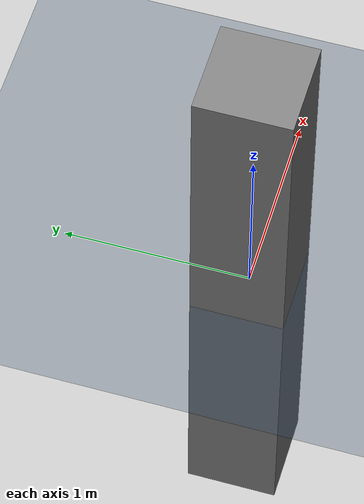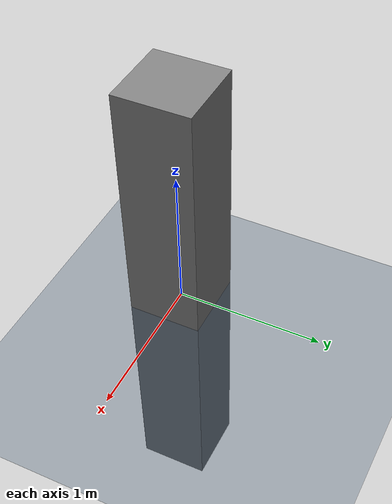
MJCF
<mujoco model="kinova_scene">
  <compiler angle="radian"/>
  <option integrator="implicitfast" impratio="10" timestep = "0.002" cone="elliptic" solver="PGS"/>
  <statistic center="0 0 0" extent="3"/>

  <asset>
    <texture type="skybox" builtin="gradient" rgb1="0.3 0.5 0.7" rgb2="0 0 0" width="512" height="3072"/>
    <texture type="2d" name="groundplane" builtin="checker" mark="edge" rgb1="0.2 0.3 0.4" rgb2="0.1 0.2 0.3"
      markrgb="0.8 0.8 0.8" width="300" height="300"/>
    <mesh name="base_link" file="base_link.STL" />
    <mesh name="shoulder_link" file="shoulder_link.STL" />
    <mesh name="half_arm_1_link" file="half_arm_1_link.STL" />
    <mesh name="half_arm_2_link" file="half_arm_2_link.STL" />
    <mesh name="forearm_link" file="forearm_link.STL" />
    <mesh name="spherical_wrist_1_link" file="spherical_wrist_1_link.STL" />
    <mesh name="spherical_wrist_2_link" file="spherical_wrist_2_link.STL" />
    <mesh name="bracelet_with_vision_link" file="bracelet_with_vision_link.STL" />
    <mesh name="delto_base_link" file="delto_base_link.stl" />
    <mesh name="link_01" file="link_01.stl" />
    <mesh name="link_02" file="link_02.stl" />
    <mesh name="link_03" file="link_03.stl" />
    <mesh name="link_04" file="link_04.stl" />
    <mesh name="link_tip_high" file="link_tip_high.stl" />
    <material name="groundplane" texture="groundplane" texuniform="true" texrepeat="5 5" reflectance="0.2"/>
  </asset>

  <worldbody>
    <light pos="0 0 1.5" dir="0 0 -1" directional="true"/>

    <geom name="floor" size="0 0 0.05" type="plane" material="groundplane"/>

    <geom name="body" size="0.25 0.25 1.7" type="box" rgba="0.5 0.5 0.5 1"/>

    <include file="dual_with_actuators.xml"/>

  </worldbody>

</mujoco>

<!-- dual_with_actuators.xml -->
<mujoco model="dual_robot">
<compiler angle="radian"/>
<option integrator="implicitfast" impratio="10" timestep = "0.002" cone="elliptic" solver="PGS"/>
 <statistic center="0 0 0" extent="3"/>
  <asset>
    <texture type="skybox" builtin="gradient" rgb1="0.3 0.5 0.7" rgb2="0 0 0" width="512" height="3072"/>
    <texture type="2d" name="groundplane" builtin="checker" mark="edge" rgb1="0.2 0.3 0.4" rgb2="0.1 0.2 0.3"
      markrgb="0.8 0.8 0.8" width="300" height="300"/>
    <material name="groundplane" texture="groundplane" texuniform="true" texrepeat="5 5" reflectance="0.2"/>
    <mesh name="base_link" file="base_link.STL" />
    <mesh name="shoulder_link" file="shoulder_link.STL" />
    <mesh name="half_arm_1_link" file="half_arm_1_link.STL" />
    <mesh name="half_arm_2_link" file="half_arm_2_link.STL" />
    <mesh name="forearm_link" file="forearm_link.STL" />
    <mesh name="spherical_wrist_1_link" file="spherical_wrist_1_link.STL" />
    <mesh name="spherical_wrist_2_link" file="spherical_wrist_2_link.STL" />
    <mesh name="bracelet_with_vision_link" file="bracelet_with_vision_link.STL" />
    <mesh name="delto_base_link" file="delto_base_link.stl" />
    <mesh name="link_01" file="link_01.stl" />
    <mesh name="link_02" file="link_02.stl" />
    <mesh name="link_03" file="link_03.stl" />
    <mesh name="link_04" file="link_04.stl" />
    <mesh name="link_tip_high" file="link_tip_high.stl" />
  </asset>

  <visual>
    <headlight diffuse="0.6 0.6 0.6" ambient="0.1 0.1 0.1" specular="0 0 0"/>
    <rgba haze="0.15 0.25 0.35 1"/>
    <global azimuth="120" elevation="-20"/>
  </visual>

<default>
    <default class="large_actuator">
      <position kp="2000" kv="100" forcerange="-105 105"/>
    </default>
    <default class="small_actuator">
      <position kp="500" kv="50" forcerange="-52 52"/>
    </default>
</default>

  <worldbody>
    <light pos="0 0 1.5" dir="0 0 -1" directional="true"/>

    <geom name="floor" size="0 0 0.05" type="plane" material="groundplane"/>

    <geom name="body" size="0.25 0.25 1.7" type="box" rgba="0.5 0.5 0.5 1"/>

    <geom name="marker" size="0.25 0.25 1.7" pos =" 0 2 0" type="box" rgba="0.5 0.5 0.5 1"/>

    <geom pos="0 -0.25 1.4" quat=" 0 0 0.707388 -0.706825 " type="mesh" contype="0" conaffinity="0" group="1" density="0" rgba="0.75294 0.75294 0.75294 1" mesh="base_link" />
    <geom name="left_base_link_collision_1" pos="0 -0.25 1.4" quat=" 0 0 0.707388 -0.706825 " type="mesh" rgba="0.75294 0.75294 0.75294 1" mesh="base_link" />
    <geom pos="0 0.25 1.4" quat="0.707388 -0.706825 0 0" type="mesh" contype="0" conaffinity="0" group="1" density="0" rgba="0.75294 0.75294 0.75294 1" mesh="base_link" />
    <geom name="right_base_link_collision_25" pos="0 0.25 1.4" quat="0.707388 -0.706825 0 0" type="mesh" rgba="0.75294 0.75294 0.75294 1" mesh="base_link" />
    <body name="left_shoulder_link" pos="0 -0.40643 1.40012" quat="-0.706828 0.707386 0 0">
      <inertial pos="-2.3e-05 -0.010364 -0.07336" quat="0.707051 0.0451246 -0.0453544 0.704263" mass="1.3773" diaginertia="0.00488868 0.00457 0.00135132" />
      <joint name="left_joint_1" pos="0 0 0" axis="0 0 1" actuatorfrcrange="-39 39" />
      <geom type="mesh" contype="0" conaffinity="0" group="1" density="0" rgba="0.75294 0.75294 0.75294 1" mesh="shoulder_link" />
      <geom name="left_shoulder_link_collision_2" type="mesh" rgba="0.75294 0.75294 0.75294 1" mesh="shoulder_link" />
      <body name="left_half_arm_1_link" pos="0 0.005375 -0.12838" quat="0.707105 0.707108 0 0">
        <inertial pos="-4.4e-05 -0.09958 -0.013278" quat="0.482348 0.516286 -0.516862 0.483366" mass="1.1636" diaginertia="0.0113017 0.011088 0.00102532" />
        <joint name="left_joint_2" pos="0 0 0" axis="0 0 1" range="-2.24 2.24" actuatorfrcrange="-39 39" />
        <geom type="mesh" contype="0" conaffinity="0" group="1" density="0" rgba="0.75294 0.75294 0.75294 1" mesh="half_arm_1_link" />
        <geom name="left_half_arm_1_link_collision_3" type="mesh" rgba="0.75294 0.75294 0.75294 1" mesh="half_arm_1_link" />
        <body name="left_half_arm_2_link" pos="0 -0.21038 -0.006375" quat="0.707105 -0.707108 0 0">
          <inertial pos="-4.4e-05 -0.006641 -0.117892" quat="0.706144 0.0213722 -0.0209128 0.707437" mass="1.1636" diaginertia="0.0111633 0.010932 0.00100671" />
          <joint name="left_joint_3" pos="0 0 0" axis="0 0 1" actuatorfrcrange="-39 39" />
          <geom type="mesh" contype="0" conaffinity="0" group="1" density="0" rgba="0.75294 0.75294 0.75294 1" mesh="half_arm_2_link" />
          <geom name="left_half_arm_2_link_collision_4" type="mesh" rgba="0.75294 0.75294 0.75294 1" mesh="half_arm_2_link" />
          <body name="left_forearm_link" pos="0 0.006375 -0.21038" quat="0.707105 0.707108 0 0">
            <inertial pos="-1.8e-05 -0.075478 -0.015006" quat="0.483678 0.515961 -0.515859 0.483455" mass="0.9302" diaginertia="0.00834839 0.008147 0.000598606" />
            <joint name="left_joint_4" pos="0 0 0" axis="0 0 1" range="-2.57 2.57" actuatorfrcrange="-39 39" />
            <geom type="mesh" contype="0" conaffinity="0" group="1" density="0" rgba="0.75294 0.75294 0.75294 1" mesh="forearm_link" />
            <geom name="left_forearm_link_collision_5" type="mesh" rgba="0.75294 0.75294 0.75294 1" mesh="forearm_link" />
            <body name="left_spherical_wrist_1_link" pos="0 -0.20843 -0.006375" quat="0.707105 -0.707108 0 0">
              <inertial pos="1e-06 -0.009432 -0.063883" quat="0.703558 0.0707492 -0.0707492 0.703558" mass="0.6781" diaginertia="0.00165901 0.001596 0.000346988" />
              <joint name="left_joint_5" pos="0 0 0" axis="0 0 1" actuatorfrcrange="-9 9" />
              <geom type="mesh" contype="0" conaffinity="0" group="1" density="0" rgba="0.75294 0.75294 0.75294 1" mesh="spherical_wrist_1_link" />
              <geom name="left_spherical_wrist_1_link_collision_6" type="mesh" rgba="0.75294 0.75294 0.75294 1" mesh="spherical_wrist_1_link" />
              <body name="left_spherical_wrist_2_link" pos="0 0.00017505 -0.10593" quat="0.707105 0.707108 0 0">
                <inertial pos="1e-06 -0.045483 -0.00965" quat="0.44426 0.550121 -0.550121 0.44426" mass="0.6781" diaginertia="0.00170087 0.001641 0.00035013" />
                <joint name="left_joint_6" pos="0 0 0" axis="0 0 1" range="-2.09 2.09" actuatorfrcrange="-9 9" />
                <geom type="mesh" contype="0" conaffinity="0" group="1" density="0" rgba="0.75294 0.75294 0.75294 1" mesh="spherical_wrist_2_link" />
                <geom name="left_spherical_wrist_2_link_collision_7" type="mesh" rgba="0.75294 0.75294 0.75294 1" mesh="spherical_wrist_2_link" />
                <body name="left_bracelet_link" pos="0 -0.10593 -0.00017505" quat="0.707105 -0.707108 0 0">
                  <inertial pos="0.000162521 0.00635937 -0.0636259" quat="0.996173 -0.0871132 0.000936754 0.00708873" mass="0.87" diaginertia="0.00294254 0.00276407 0.000900587" />
                  <joint name="left_joint_7" pos="0 0 0" axis="0 0 1" actuatorfrcrange="-9 9" />
                  <geom type="mesh" contype="0" conaffinity="0" group="1" density="0" rgba="0.75294 0.75294 0.75294 1" mesh="bracelet_with_vision_link" />
                  <geom name="left_bracelet_link_collision_8" type="mesh" rgba="0.75294 0.75294 0.75294 1" mesh="bracelet_with_vision_link" />
                  <geom pos="2.41397e-06 -0.000454995 -0.109339" quat="0.00116218 0.707546 -0.706665 0.00116764" type="mesh" contype="0" conaffinity="0" group="1" density="0" rgba="0.196 0.196 0.196 1" mesh="delto_base_link" />
                  <geom name="left_delto_base_link_collision_9" pos="2.41397e-06 -0.000454995 -0.109339" quat="0.00116218 0.707546 -0.706665 0.00116764" type="mesh" rgba="0.196 0.196 0.196 1" mesh="delto_base_link" />
                  <body name="left_F1_01" pos="2.11027e-05 -0.0265 -0.161525" quat="0 0.707388 -0.706825 0">
                    <inertial pos="0.0003906 3.121e-08 -0.014" mass="0.061" diaginertia="1.924e-05 1.70941e-05 5.94788e-06" />
                    <joint name="left_F1M1" pos="0 0 0" axis="0 0 1" range="-1.0472 1.0472" actuatorfrcrange="-10 10" damping="1.1" frictionloss="1.1" />
                    <geom pos="0.0018977 -1.00177e-06 -0.0229838" quat="0.705221 -0.0510098 -0.0510021 0.705309" type="mesh" contype="0" conaffinity="0" group="1" density="0" rgba="0.196 0.196 0.196 1" mesh="link_01" />
                    <geom name="left_F1_01_collision_10" pos="0.0018977 -1.00177e-06 -0.0229838" quat="0.705221 -0.0510098 -0.0510021 0.705309" type="mesh" rgba="0.196 0.196 0.196 1" mesh="link_01" />
                    <body name="left_F1_02" quat="1.16026e-08 -0.707107 -1.16026e-08 -0.707107">
                      <inertial pos="0.01 3.444e-06 0.016" mass="0.025" diaginertia="7.1648e-06 6.31302e-06 3.27418e-06" />
                      <joint name="left_F1M2" pos="0 0 0" axis="0 0 1" range="-1.76278 1.76278" actuatorfrcrange="-10 10" damping="1.1" frictionloss="1.1" />
                      <geom pos="0.010322 0.000267674 0.0135906" quat="0.982248 -0.0130424 0.186916 -0.00903989" type="mesh" contype="0" conaffinity="0" group="1" density="0" rgba="0.196 0.196 0.196 1" mesh="link_02" />
                      <geom name="left_F1_02_collision_11" pos="0.010322 0.000267674 0.0135906" quat="0.982248 -0.0130424 0.186916 -0.00903989" type="mesh" rgba="0.196 0.196 0.196 1" mesh="link_02" />
                      <body name="left_F1_03" pos="0.02022 0 0.03136" quat="0.5 -0.5 -0.5 -0.5">
                        <inertial pos="0.014 -0.0004527 -3.953e-05" mass="0.051" diaginertia="1.69122e-05 1.49403e-05 6.50553e-06" />
                        <joint name="left_F1M3" pos="0 0 0" axis="0 0 1" range="-0.15708 2.53073" actuatorfrcrange="-10 10" damping="1.1" frictionloss="1.1" />
                        <geom pos="0.0190346 -0.000761178 0.000157348" quat="0.499589 0.485884 0.498796 0.515296" type="mesh" contype="0" conaffinity="0" group="1" density="0" rgba="0.196 0.196 0.196 1" mesh="link_03" />
                        <geom name="left_F1_03_collision_12" pos="0.0190346 -0.000761178 0.000157348" quat="0.499589 0.485884 0.498796 0.515296" type="mesh" rgba="0.196 0.196 0.196 1" mesh="link_03" />
                        <body name="left_F1_04" pos="0.0434 0 0">
                          <inertial pos="0.0180423 -0.000265186 -3.82115e-05" quat="0.502534 0.501012 0.497465 0.498974" mass="0.071" diaginertia="2.27675e-05 1.78556e-05 1.24573e-05" />
                          <joint name="left_F1M4" pos="0 0 0" axis="0 0 1" range="-0.226893 2.02458" actuatorfrcrange="-10 10" damping="1.1" frictionloss="1.1" />
                          <geom pos="0.0119923 -0.000772699 -5.20111e-06" quat="0.475945 0.47584 0.524828 0.52116" type="mesh" contype="0" conaffinity="0" group="1" density="0" rgba="0.196 0.196 0.196 1" mesh="link_04" />
                          <geom name="left_F1_04_collision_13" pos="0.0119923 -0.000772699 -5.20111e-06" quat="0.475945 0.47584 0.524828 0.52116" type="mesh" rgba="0.196 0.196 0.196 1" mesh="link_04" />
                          <geom pos="0.0449594 -0.000422631 2.30189e-07" quat="0.512413 0.512458 0.487263 0.487231" type="mesh" contype="0" conaffinity="0" group="1" density="0" rgba="1 1 1 1" mesh="link_tip_high" />
                          <geom name="left_F1_TIP_collision_14" pos="0.0449594 -0.000422631 2.30189e-07" quat="0.512413 0.512458 0.487263 0.487231" type="mesh" rgba="1 1 1 1" mesh="link_tip_high" />
                        </body>
                      </body>
                    </body>
                  </body>
                  <body name="left_F2_01" pos="-0.0230106 0.0133217 -0.161525" quat="0 0.707388 0.706825 0">
                    <inertial pos="0.0003906 3.121e-08 -0.014" mass="0.061" diaginertia="1.924e-05 1.70941e-05 5.94788e-06" />
                    <joint name="left_F2M1" pos="0 0 0" axis="0 0 1" range="-1.91986 0.139626" actuatorfrcrange="-10 10" damping="1.1" frictionloss="1.1" />
                    <geom pos="0.0018977 -1.00177e-06 -0.0229838" quat="0.705221 -0.0510098 -0.0510021 0.705309" type="mesh" contype="0" conaffinity="0" group="1" density="0" rgba="0.196 0.196 0.196 1" mesh="link_01" />
                    <geom name="left_F2_01_collision_15" pos="0.0018977 -1.00177e-06 -0.0229838" quat="0.705221 -0.0510098 -0.0510021 0.705309" type="mesh" rgba="0.196 0.196 0.196 1" mesh="link_01" />
                    <body name="left_F2_02" quat="0.000563312 -0.707388 -0.000562864 -0.706825">
                      <inertial pos="0.01 3.444e-06 0.016" mass="0.025" diaginertia="7.1648e-06 6.31302e-06 3.27418e-06" />
                      <joint name="left_F2M2" pos="0 0 0" axis="0 0 1" range="-1.76278 1.76278" actuatorfrcrange="-10 10" damping="1.1" frictionloss="1.1" />
                      <geom pos="0.010322 0.000267674 0.0135906" quat="0.982248 -0.0130424 0.186916 -0.00903989" type="mesh" contype="0" conaffinity="0" group="1" density="0" rgba="0.196 0.196 0.196 1" mesh="link_02" />
                      <geom name="left_F2_02_collision_16" pos="0.010322 0.000267674 0.0135906" quat="0.982248 -0.0130424 0.186916 -0.00903989" type="mesh" rgba="0.196 0.196 0.196 1" mesh="link_02" />
                      <body name="left_F2_03" pos="0.02022 0 0.03136" quat="0.500398 -0.5 -0.5 -0.499602">
                        <inertial pos="0.014 -0.0004527 -3.953e-05" mass="0.051" diaginertia="1.69122e-05 1.49403e-05 6.50553e-06" />
                        <joint name="left_F2M3" pos="0 0 0" axis="0 0 1" range="-0.15708 2.53073" actuatorfrcrange="-10 10" damping="1.1" frictionloss="1.1" />
                        <geom pos="0.0190346 -0.000761178 0.000157348" quat="0.499589 0.485884 0.498796 0.515296" type="mesh" contype="0" conaffinity="0" group="1" density="0" rgba="0.196 0.196 0.196 1" mesh="link_03" />
                        <geom name="left_F2_03_collision_17" pos="0.0190346 -0.000761178 0.000157348" quat="0.499589 0.485884 0.498796 0.515296" type="mesh" rgba="0.196 0.196 0.196 1" mesh="link_03" />
                        <body name="left_F2_04" pos="0.0434 0 0">
                          <inertial pos="0.0180423 -0.000265186 -3.82115e-05" quat="0.502534 0.501012 0.497465 0.498974" mass="0.071" diaginertia="2.27675e-05 1.78556e-05 1.24573e-05" />
                          <joint name="left_F2M4" pos="0 0 0" axis="0.0433592 0 0.99906" range="-0.226893 2.02458" actuatorfrcrange="-10 10" damping="1.1" frictionloss="1.1" />
                          <geom pos="0.0119923 -0.000772699 -5.20111e-06" quat="0.475945 0.47584 0.524828 0.52116" type="mesh" contype="0" conaffinity="0" group="1" density="0" rgba="0.196 0.196 0.196 1" mesh="link_04" />
                          <geom name="left_F2_04_collision_18" pos="0.0119923 -0.000772699 -5.20111e-06" quat="0.475945 0.47584 0.524828 0.52116" type="mesh" rgba="0.196 0.196 0.196 1" mesh="link_04" />
                          <geom pos="0.0449594 -0.000422631 2.30189e-07" quat="0.512413 0.512458 0.487263 0.487231" type="mesh" contype="0" conaffinity="0" group="1" density="0" rgba="1 1 1 1" mesh="link_tip_high" />
                          <geom name="left_F2_TIP_collision_19" pos="0.0449594 -0.000422631 2.30189e-07" quat="0.512413 0.512458 0.487263 0.487231" type="mesh" rgba="1 1 1 1" mesh="link_tip_high" />
                        </body>
                      </body>
                    </body>
                  </body>
                  <body name="left_F3_01" pos="0.0229894 0.0133583 -0.161525" quat="0 0.707388 0.706825 0">
                    <inertial pos="0.0003906 3.121e-08 -0.014" mass="0.061" diaginertia="1.924e-05 1.70941e-05 5.94788e-06" />
                    <joint name="left_F3M1" pos="0 0 0" axis="0 0 1" range="-0.0872665 2.00713" actuatorfrcrange="-10 10" damping="1.1" frictionloss="1.1" />
                    <geom pos="0.0018977 -1.00177e-06 -0.0229838" quat="0.705221 -0.0510098 -0.0510021 0.705309" type="mesh" contype="0" conaffinity="0" group="1" density="0" rgba="0.196 0.196 0.196 1" mesh="link_01" />
                    <geom name="left_F3_01_collision_20" pos="0.0018977 -1.00177e-06 -0.0229838" quat="0.705221 -0.0510098 -0.0510021 0.705309" type="mesh" rgba="0.196 0.196 0.196 1" mesh="link_01" />
                    <body name="left_F3_02" quat="0.000563312 -0.707388 -0.000562864 -0.706825">
                      <inertial pos="0.01 3.444e-06 0.016" mass="0.025" diaginertia="7.1648e-06 6.31302e-06 3.27418e-06" />
                      <joint name="left_F3M2" pos="0 0 0" axis="0 0 1" range="-1.76278 1.76278" actuatorfrcrange="-10 10" damping="1.1" frictionloss="1.1" />
                      <geom pos="0.010322 0.000267674 0.0135906" quat="0.982248 -0.0130424 0.186916 -0.00903989" type="mesh" contype="0" conaffinity="0" group="1" density="0" rgba="0.196 0.196 0.196 1" mesh="link_02" />
                      <geom name="left_F3_02_collision_21" pos="0.010322 0.000267674 0.0135906" quat="0.982248 -0.0130424 0.186916 -0.00903989" type="mesh" rgba="0.196 0.196 0.196 1" mesh="link_02" />
                      <body name="left_F3_03" pos="0.02022 0 0.03136" quat="0.500398 -0.5 -0.5 -0.499602">
                        <inertial pos="0.014 -0.0004527 -3.953e-05" mass="0.051" diaginertia="1.69122e-05 1.49403e-05 6.50553e-06" />
                        <joint name="left_F3M3" pos="0 0 0" axis="0 0 1" range="-0.15708 2.53073" actuatorfrcrange="-10 10" damping="1.1" frictionloss="1.1" />
                        <geom pos="0.0190346 -0.000761178 0.000157348" quat="0.499589 0.485884 0.498796 0.515296" type="mesh" contype="0" conaffinity="0" group="1" density="0" rgba="0.196 0.196 0.196 1" mesh="link_03" />
                        <geom name="left_F3_03_collision_22" pos="0.0190346 -0.000761178 0.000157348" quat="0.499589 0.485884 0.498796 0.515296" type="mesh" rgba="0.196 0.196 0.196 1" mesh="link_03" />
                        <body name="left_F3_04" pos="0.0434 0 0">
                          <inertial pos="0.0180423 -0.000265186 -3.82115e-05" quat="0.502534 0.501012 0.497465 0.498974" mass="0.071" diaginertia="2.27675e-05 1.78556e-05 1.24573e-05" />
                          <joint name="left_F3M4" pos="0 0 0" axis="0 0 1" range="-0.226893 2.02458" actuatorfrcrange="-10 10" damping="1.1" frictionloss="1.1" />
                          <geom pos="0.0119923 -0.000772699 -5.20111e-06" quat="0.475945 0.47584 0.524828 0.52116" type="mesh" contype="0" conaffinity="0" group="1" density="0" rgba="0.196 0.196 0.196 1" mesh="link_04" />
                          <geom name="left_F3_04_collision_23" pos="0.0119923 -0.000772699 -5.20111e-06" quat="0.475945 0.47584 0.524828 0.52116" type="mesh" rgba="0.196 0.196 0.196 1" mesh="link_04" />
                          <geom pos="0.0449594 -0.000422631 2.30189e-07" quat="0.512413 0.512458 0.487263 0.487231" type="mesh" contype="0" conaffinity="0" group="1" density="0" rgba="1 1 1 1" mesh="link_tip_high" />
                          <geom name="left_F3_TIP_collision_24" pos="0.0449594 -0.000422631 2.30189e-07" quat="0.512413 0.512458 0.487263 0.487231" type="mesh" rgba="1 1 1 1" mesh="link_tip_high" />
                        </body>
                      </body>
                    </body>
                  </body>
                </body>
              </body>
            </body>
          </body>
        </body>
      </body>
    </body>
    <body name="right_shoulder_link" pos="0 0.40643 1.40012" quat="0.706823 0.707391 0 0">
      <inertial pos="-2.3e-05 -0.010364 -0.07336" quat="0.707051 0.0451246 -0.0453544 0.704263" mass="1.3773" diaginertia="0.00488868 0.00457 0.00135132" />
      <joint name="right_joint_1" pos="0 0 0" axis="0 0 1" actuatorfrcrange="-39 39" />
      <geom type="mesh" contype="0" conaffinity="0" group="1" density="0" rgba="0.75294 0.75294 0.75294 1" mesh="shoulder_link" />
      <geom name="right_shoulder_link_collision_26" type="mesh" rgba="0.75294 0.75294 0.75294 1" mesh="shoulder_link" />
      <body name="right_half_arm_1_link" pos="0 0.005375 -0.12838" quat="0.707105 0.707108 0 0">
        <inertial pos="-4.4e-05 -0.09958 -0.013278" quat="0.482348 0.516286 -0.516862 0.483366" mass="1.1636" diaginertia="0.0113017 0.011088 0.00102532" />
        <joint name="right_joint_2" pos="0 0 0" axis="0 0 1" range="-2.24 2.24" actuatorfrcrange="-39 39" />
        <geom type="mesh" contype="0" conaffinity="0" group="1" density="0" rgba="0.75294 0.75294 0.75294 1" mesh="half_arm_1_link" />
        <geom name="right_half_arm_1_link_collision_27" type="mesh" rgba="0.75294 0.75294 0.75294 1" mesh="half_arm_1_link" />
        <body name="right_half_arm_2_link" pos="0 -0.21038 -0.006375" quat="0.707105 -0.707108 0 0">
          <inertial pos="-4.4e-05 -0.006641 -0.117892" quat="0.706144 0.0213722 -0.0209128 0.707437" mass="1.1636" diaginertia="0.0111633 0.010932 0.00100671" />
          <joint name="right_joint_3" pos="0 0 0" axis="0 0 1" actuatorfrcrange="-39 39" />
          <geom type="mesh" contype="0" conaffinity="0" group="1" density="0" rgba="0.75294 0.75294 0.75294 1" mesh="half_arm_2_link" />
          <geom name="right_half_arm_2_link_collision_28" type="mesh" rgba="0.75294 0.75294 0.75294 1" mesh="half_arm_2_link" />
          <body name="right_forearm_link" pos="0 0.006375 -0.21038" quat="0.707105 0.707108 0 0">
            <inertial pos="-1.8e-05 -0.075478 -0.015006" quat="0.483678 0.515961 -0.515859 0.483455" mass="0.9302" diaginertia="0.00834839 0.008147 0.000598606" />
            <joint name="right_joint_4" pos="0 0 0" axis="0 0 1" range="-2.57 2.57" actuatorfrcrange="-39 39" />
            <geom type="mesh" contype="0" conaffinity="0" group="1" density="0" rgba="0.75294 0.75294 0.75294 1" mesh="forearm_link" />
            <geom name="right_forearm_link_collision_29" type="mesh" rgba="0.75294 0.75294 0.75294 1" mesh="forearm_link" />
            <body name="right_spherical_wrist_1_link" pos="0 -0.20843 -0.006375" quat="0.707105 -0.707108 0 0">
              <inertial pos="1e-06 -0.009432 -0.063883" quat="0.703558 0.0707492 -0.0707492 0.703558" mass="0.6781" diaginertia="0.00165901 0.001596 0.000346988" />
              <joint name="right_joint_5" pos="0 0 0" axis="0 0 1" actuatorfrcrange="-9 9" />
              <geom type="mesh" contype="0" conaffinity="0" group="1" density="0" rgba="0.75294 0.75294 0.75294 1" mesh="spherical_wrist_1_link" />
              <geom name="right_spherical_wrist_1_link_collision_30" type="mesh" rgba="0.75294 0.75294 0.75294 1" mesh="spherical_wrist_1_link" />
              <body name="right_spherical_wrist_2_link" pos="0 0.00017505 -0.10593" quat="0.707105 0.707108 0 0">
                <inertial pos="1e-06 -0.045483 -0.00965" quat="0.44426 0.550121 -0.550121 0.44426" mass="0.6781" diaginertia="0.00170087 0.001641 0.00035013" />
                <joint name="right_joint_6" pos="0 0 0" axis="0 0 1" range="-2.09 2.09" actuatorfrcrange="-9 9" />
                <geom type="mesh" contype="0" conaffinity="0" group="1" density="0" rgba="0.75294 0.75294 0.75294 1" mesh="spherical_wrist_2_link" />
                <geom name="right_spherical_wrist_2_link_collision_31" type="mesh" rgba="0.75294 0.75294 0.75294 1" mesh="spherical_wrist_2_link" />
                <body name="right_bracelet_link" pos="0 -0.10593 -0.00017505" quat="0.707105 -0.707108 0 0">
                  <inertial pos="0.000162521 0.00635937 -0.0636259" quat="0.996173 -0.0871132 0.000936754 0.00708873" mass="0.87" diaginertia="0.00294254 0.00276407 0.000900587" />
                  <joint name="right_joint_7" pos="0 0 0" axis="0 0 1" actuatorfrcrange="-9 9" />
                  <geom type="mesh" contype="0" conaffinity="0" group="1" density="0" rgba="0.75294 0.75294 0.75294 1" mesh="bracelet_with_vision_link" />
                  <geom name="right_bracelet_link_collision_32" type="mesh" rgba="0.75294 0.75294 0.75294 1" mesh="bracelet_with_vision_link" />
                  <geom pos="2.41397e-06 -0.000454995 -0.109339" quat="0.00116218 0.707546 -0.706665 0.00116764" type="mesh" contype="0" conaffinity="0" group="1" density="0" rgba="0.196 0.196 0.196 1" mesh="delto_base_link" />
                  <geom name="right_delto_base_link_collision_33" pos="2.41397e-06 -0.000454995 -0.109339" quat="0.00116218 0.707546 -0.706665 0.00116764" type="mesh" rgba="0.196 0.196 0.196 1" mesh="delto_base_link" />
                  <body name="right_F1_01" pos="2.11027e-05 -0.0265 -0.161525" quat="0 0.707388 -0.706825 0">
                    <inertial pos="0.0003906 3.121e-08 -0.014" mass="0.061" diaginertia="1.924e-05 1.70941e-05 5.94788e-06" />
                    <joint name="right_F1M1" pos="0 0 0" axis="0 0 1" range="-1.0472 1.0472" actuatorfrcrange="-10 10" damping="1.1" frictionloss="1.1" />
                    <geom pos="0.0018977 -1.00177e-06 -0.0229838" quat="0.705221 -0.0510098 -0.0510021 0.705309" type="mesh" contype="0" conaffinity="0" group="1" density="0" rgba="0.196 0.196 0.196 1" mesh="link_01" />
                    <geom name="right_F1_01_collision_34" pos="0.0018977 -1.00177e-06 -0.0229838" quat="0.705221 -0.0510098 -0.0510021 0.705309" type="mesh" rgba="0.196 0.196 0.196 1" mesh="link_01" />
                    <body name="right_F1_02" quat="1.16026e-08 -0.707107 -1.16026e-08 -0.707107">
                      <inertial pos="0.01 3.444e-06 0.016" mass="0.025" diaginertia="7.1648e-06 6.31302e-06 3.27418e-06" />
                      <joint name="right_F1M2" pos="0 0 0" axis="0 0 1" range="-1.76278 1.76278" actuatorfrcrange="-10 10" damping="1.1" frictionloss="1.1" />
                      <geom pos="0.010322 0.000267674 0.0135906" quat="0.982248 -0.0130424 0.186916 -0.00903989" type="mesh" contype="0" conaffinity="0" group="1" density="0" rgba="0.196 0.196 0.196 1" mesh="link_02" />
                      <geom name="right_F1_02_collision_35" pos="0.010322 0.000267674 0.0135906" quat="0.982248 -0.0130424 0.186916 -0.00903989" type="mesh" rgba="0.196 0.196 0.196 1" mesh="link_02" />
                      <body name="right_F1_03" pos="0.02022 0 0.03136" quat="0.5 -0.5 -0.5 -0.5">
                        <inertial pos="0.014 -0.0004527 -3.953e-05" mass="0.051" diaginertia="1.69122e-05 1.49403e-05 6.50553e-06" />
                        <joint name="right_F1M3" pos="0 0 0" axis="0 0 1" range="-0.15708 2.53073" actuatorfrcrange="-10 10" damping="1.1" frictionloss="1.1" />
                        <geom pos="0.0190346 -0.000761178 0.000157348" quat="0.499589 0.485884 0.498796 0.515296" type="mesh" contype="0" conaffinity="0" group="1" density="0" rgba="0.196 0.196 0.196 1" mesh="link_03" />
                        <geom name="right_F1_03_collision_36" pos="0.0190346 -0.000761178 0.000157348" quat="0.499589 0.485884 0.498796 0.515296" type="mesh" rgba="0.196 0.196 0.196 1" mesh="link_03" />
                        <body name="right_F1_04" pos="0.0434 0 0">
                          <inertial pos="0.0180423 -0.000265186 -3.82115e-05" quat="0.502534 0.501012 0.497465 0.498974" mass="0.071" diaginertia="2.27675e-05 1.78556e-05 1.24573e-05" />
                          <joint name="right_F1M4" pos="0 0 0" axis="0 0 1" range="-0.226893 2.02458" actuatorfrcrange="-10 10" damping="1.1" frictionloss="1.1" />
                          <geom pos="0.0119923 -0.000772699 -5.20111e-06" quat="0.475945 0.47584 0.524828 0.52116" type="mesh" contype="0" conaffinity="0" group="1" density="0" rgba="0.196 0.196 0.196 1" mesh="link_04" />
                          <geom name="right_F1_04_collision_37" pos="0.0119923 -0.000772699 -5.20111e-06" quat="0.475945 0.47584 0.524828 0.52116" type="mesh" rgba="0.196 0.196 0.196 1" mesh="link_04" />
                          <geom pos="0.0449594 -0.000422631 2.30189e-07" quat="0.512413 0.512458 0.487263 0.487231" type="mesh" contype="0" conaffinity="0" group="1" density="0" rgba="1 1 1 1" mesh="link_tip_high" />
                          <geom name="right_F1_TIP_collision_38" pos="0.0449594 -0.000422631 2.30189e-07" quat="0.512413 0.512458 0.487263 0.487231" type="mesh" rgba="1 1 1 1" mesh="link_tip_high" />
                        </body>
                      </body>
                    </body>
                  </body>
                  <body name="right_F2_01" pos="-0.0230106 0.0133217 -0.161525" quat="0 0.707388 0.706825 0">
                    <inertial pos="0.0003906 3.121e-08 -0.014" mass="0.061" diaginertia="1.924e-05 1.70941e-05 5.94788e-06" />
                    <joint name="right_F2M1" pos="0 0 0" axis="0 0 1" range="-1.91986 0.139626" actuatorfrcrange="-10 10" damping="1.1" frictionloss="1.1" />
                    <geom pos="0.0018977 -1.00177e-06 -0.0229838" quat="0.705221 -0.0510098 -0.0510021 0.705309" type="mesh" contype="0" conaffinity="0" group="1" density="0" rgba="0.196 0.196 0.196 1" mesh="link_01" />
                    <geom name="right_F2_01_collision_39" pos="0.0018977 -1.00177e-06 -0.0229838" quat="0.705221 -0.0510098 -0.0510021 0.705309" type="mesh" rgba="0.196 0.196 0.196 1" mesh="link_01" />
                    <body name="right_F2_02" quat="0.000563312 -0.707388 -0.000562864 -0.706825">
                      <inertial pos="0.01 3.444e-06 0.016" mass="0.025" diaginertia="7.1648e-06 6.31302e-06 3.27418e-06" />
                      <joint name="right_F2M2" pos="0 0 0" axis="0 0 1" range="-1.76278 1.76278" actuatorfrcrange="-10 10" damping="1.1" frictionloss="1.1" />
                      <geom pos="0.010322 0.000267674 0.0135906" quat="0.982248 -0.0130424 0.186916 -0.00903989" type="mesh" contype="0" conaffinity="0" group="1" density="0" rgba="0.196 0.196 0.196 1" mesh="link_02" />
                      <geom name="right_F2_02_collision_40" pos="0.010322 0.000267674 0.0135906" quat="0.982248 -0.0130424 0.186916 -0.00903989" type="mesh" rgba="0.196 0.196 0.196 1" mesh="link_02" />
                      <body name="right_F2_03" pos="0.02022 0 0.03136" quat="0.500398 -0.5 -0.5 -0.499602">
                        <inertial pos="0.014 -0.0004527 -3.953e-05" mass="0.051" diaginertia="1.69122e-05 1.49403e-05 6.50553e-06" />
                        <joint name="right_F2M3" pos="0 0 0" axis="0 0 1" range="-0.15708 2.53073" actuatorfrcrange="-10 10" damping="1.1" frictionloss="1.1" />
                        <geom pos="0.0190346 -0.000761178 0.000157348" quat="0.499589 0.485884 0.498796 0.515296" type="mesh" contype="0" conaffinity="0" group="1" density="0" rgba="0.196 0.196 0.196 1" mesh="link_03" />
                        <geom name="right_F2_03_collision_41" pos="0.0190346 -0.000761178 0.000157348" quat="0.499589 0.485884 0.498796 0.515296" type="mesh" rgba="0.196 0.196 0.196 1" mesh="link_03" />
                        <body name="right_F2_04" pos="0.0434 0 0">
                          <inertial pos="0.0180423 -0.000265186 -3.82115e-05" quat="0.502534 0.501012 0.497465 0.498974" mass="0.071" diaginertia="2.27675e-05 1.78556e-05 1.24573e-05" />
                          <joint name="right_F2M4" pos="0 0 0" axis="0.0433592 0 0.99906" range="-0.226893 2.02458" actuatorfrcrange="-10 10" damping="1.1" frictionloss="1.1" />
                          <geom pos="0.0119923 -0.000772699 -5.20111e-06" quat="0.475945 0.47584 0.524828 0.52116" type="mesh" contype="0" conaffinity="0" group="1" density="0" rgba="0.196 0.196 0.196 1" mesh="link_04" />
                          <geom name="right_F2_04_collision_42" pos="0.0119923 -0.000772699 -5.20111e-06" quat="0.475945 0.47584 0.524828 0.52116" type="mesh" rgba="0.196 0.196 0.196 1" mesh="link_04" />
                          <geom pos="0.0449594 -0.000422631 2.30189e-07" quat="0.512413 0.512458 0.487263 0.487231" type="mesh" contype="0" conaffinity="0" group="1" density="0" rgba="1 1 1 1" mesh="link_tip_high" />
                          <geom name="right_F2_TIP_collision_43" pos="0.0449594 -0.000422631 2.30189e-07" quat="0.512413 0.512458 0.487263 0.487231" type="mesh" rgba="1 1 1 1" mesh="link_tip_high" />
                        </body>
                      </body>
                    </body>
                  </body>
                  <body name="right_F3_01" pos="0.0229894 0.0133583 -0.161525" quat="0 0.707388 0.706825 0">
                    <inertial pos="0.0003906 3.121e-08 -0.014" mass="0.061" diaginertia="1.924e-05 1.70941e-05 5.94788e-06" />
                    <joint name="right_F3M1" pos="0 0 0" axis="0 0 1" range="-0.0872665 2.00713" actuatorfrcrange="-10 10" damping="1.1" frictionloss="1.1" />
                    <geom pos="0.0018977 -1.00177e-06 -0.0229838" quat="0.705221 -0.0510098 -0.0510021 0.705309" type="mesh" contype="0" conaffinity="0" group="1" density="0" rgba="0.196 0.196 0.196 1" mesh="link_01" />
                    <geom name="right_F3_01_collision_44" pos="0.0018977 -1.00177e-06 -0.0229838" quat="0.705221 -0.0510098 -0.0510021 0.705309" type="mesh" rgba="0.196 0.196 0.196 1" mesh="link_01" />
                    <body name="right_F3_02" quat="0.000563312 -0.707388 -0.000562864 -0.706825">
                      <inertial pos="0.01 3.444e-06 0.016" mass="0.025" diaginertia="7.1648e-06 6.31302e-06 3.27418e-06" />
                      <joint name="right_F3M2" pos="0 0 0" axis="0 0 1" range="-1.76278 1.76278" actuatorfrcrange="-10 10" damping="1.1" frictionloss="1.1" />
                      <geom pos="0.010322 0.000267674 0.0135906" quat="0.982248 -0.0130424 0.186916 -0.00903989" type="mesh" contype="0" conaffinity="0" group="1" density="0" rgba="0.196 0.196 0.196 1" mesh="link_02" />
                      <geom name="right_F3_02_collision_45" pos="0.010322 0.000267674 0.0135906" quat="0.982248 -0.0130424 0.186916 -0.00903989" type="mesh" rgba="0.196 0.196 0.196 1" mesh="link_02" />
                      <body name="right_F3_03" pos="0.02022 0 0.03136" quat="0.500398 -0.5 -0.5 -0.499602">
                        <inertial pos="0.014 -0.0004527 -3.953e-05" mass="0.051" diaginertia="1.69122e-05 1.49403e-05 6.50553e-06" />
                        <joint name="right_F3M3" pos="0 0 0" axis="0 0 1" range="-0.15708 2.53073" actuatorfrcrange="-10 10" damping="1.1" frictionloss="1.1" />
                        <geom pos="0.0190346 -0.000761178 0.000157348" quat="0.499589 0.485884 0.498796 0.515296" type="mesh" contype="0" conaffinity="0" group="1" density="0" rgba="0.196 0.196 0.196 1" mesh="link_03" />
                        <geom name="right_F3_03_collision_46" pos="0.0190346 -0.000761178 0.000157348" quat="0.499589 0.485884 0.498796 0.515296" type="mesh" rgba="0.196 0.196 0.196 1" mesh="link_03" />
                        <body name="right_F3_04" pos="0.0434 0 0">
                          <inertial pos="0.0180423 -0.000265186 -3.82115e-05" quat="0.502534 0.501012 0.497465 0.498974" mass="0.071" diaginertia="2.27675e-05 1.78556e-05 1.24573e-05" />
                          <joint name="right_F3M4" pos="0 0 0" axis="0 0 1" range="-0.226893 2.02458" actuatorfrcrange="-10 10" damping="1.1" frictionloss="1.1" />
                          <geom pos="0.0119923 -0.000772699 -5.20111e-06" quat="0.475945 0.47584 0.524828 0.52116" type="mesh" contype="0" conaffinity="0" group="1" density="0" rgba="0.196 0.196 0.196 1" mesh="link_04" />
                          <geom name="right_F3_04_collision_47" pos="0.0119923 -0.000772699 -5.20111e-06" quat="0.475945 0.47584 0.524828 0.52116" type="mesh" rgba="0.196 0.196 0.196 1" mesh="link_04" />
                          <geom pos="0.0449594 -0.000422631 2.30189e-07" quat="0.512413 0.512458 0.487263 0.487231" type="mesh" contype="0" conaffinity="0" group="1" density="0" rgba="1 1 1 1" mesh="link_tip_high" />
                          <geom name="right_F3_TIP_collision_48" pos="0.0449594 -0.000422631 2.30189e-07" quat="0.512413 0.512458 0.487263 0.487231" type="mesh" rgba="1 1 1 1" mesh="link_tip_high" />
                        </body>
                      </body>
                    </body>
                  </body>
                </body>
              </body>
            </body>
          </body>
        </body>
      </body>
    </body>
  </worldbody>
<actuator>
<general name="actuator1" joint="left_joint_1" class="large_actuator" />
<general name="actuator2" joint="left_joint_2" class="large_actuator" ctrlrange="-2.2497294058206907 2.2497294058206907" />
<general name="actuator3" joint="left_joint_3" class="large_actuator" />
<general name="actuator4" joint="left_joint_4" class="large_actuator" ctrlrange="-2.5795966344476193 2.5795966344476193" />
<general name="actuator5" joint="left_joint_5" class="small_actuator" />
<general name="actuator6" joint="left_joint_6" class="small_actuator" ctrlrange="-2.0996310901491784 2.0996310901491784"/>
<general name="actuator7" joint="left_joint_7" class="small_actuator" />
<general name="actuator20" joint="right_joint_1" class="large_actuator" />
<general name="actuator21" joint="right_joint_2" class="large_actuator" ctrlrange="-2.2497294058206907 2.2497294058206907" />
<general name="actuator22" joint="right_joint_3" class="large_actuator" />
<general name="actuator23" joint="right_joint_4" class="large_actuator" ctrlrange="-2.5795966344476193 2.5795966344476193" />
<general name="actuator24" joint="right_joint_5" class="small_actuator" />
<general name="actuator25" joint="right_joint_6" class="small_actuator" ctrlrange="-2.0996310901491784 2.0996310901491784"/>
<general name="actuator26" joint="right_joint_7" class="small_actuator" />
</actuator>
</mujoco>
